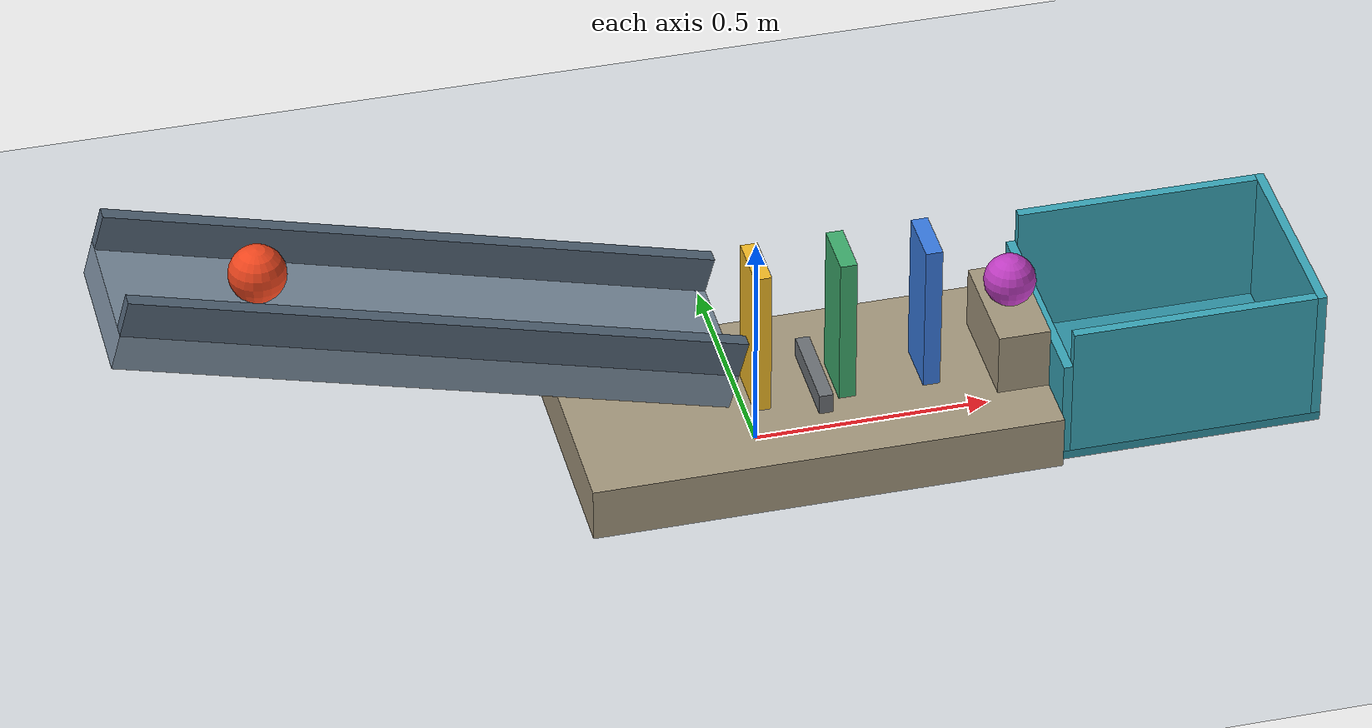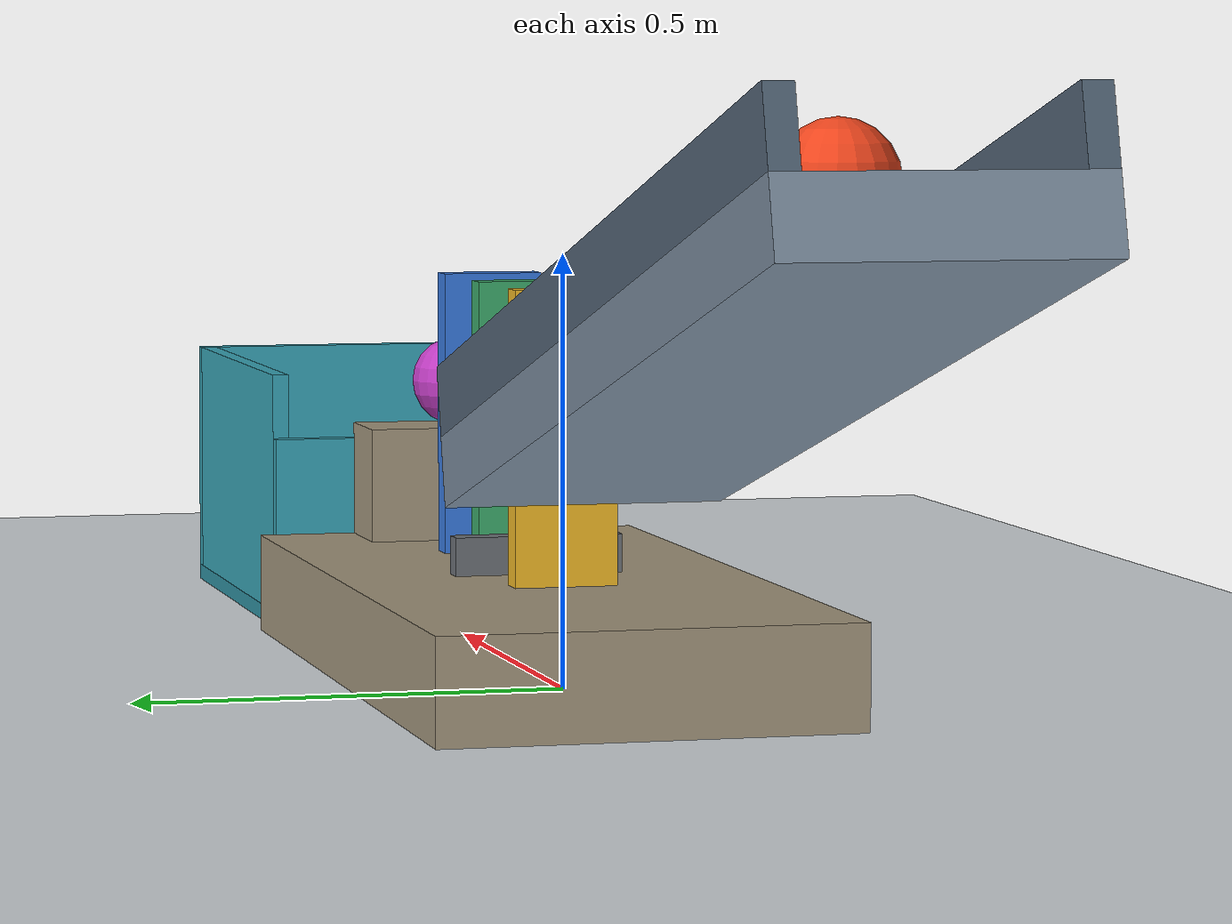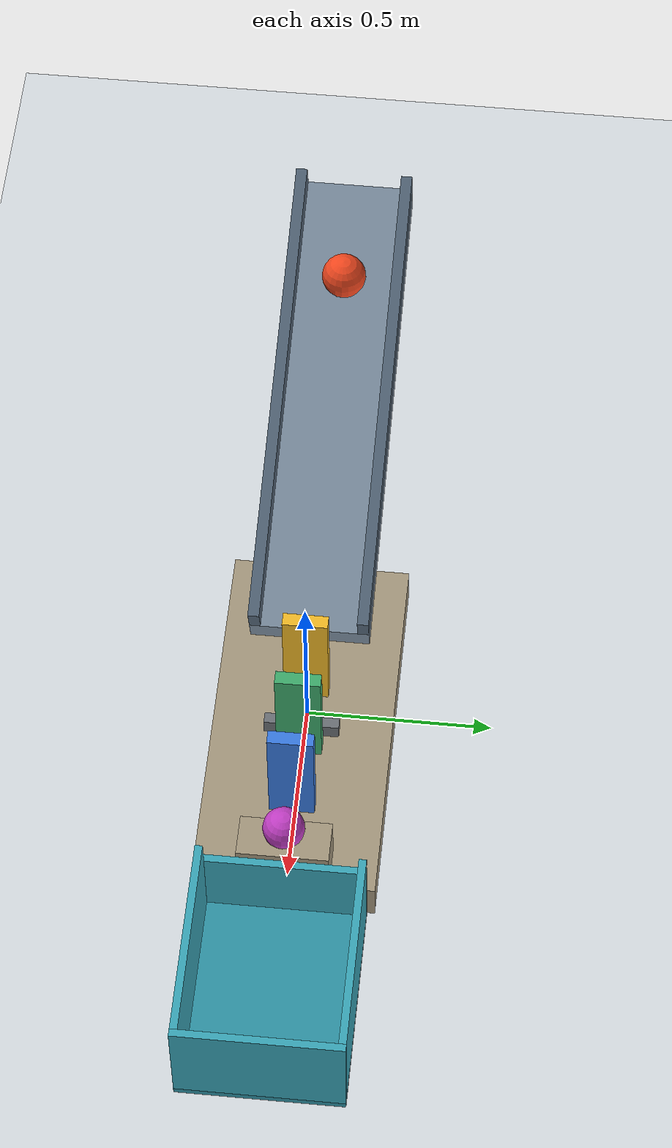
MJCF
<mujoco model="ramp_domino_ball_cup">
  <compiler angle="degree" inertiafromgeom="true"/>
  <option timestep="0.002" gravity="0 0 -9.81" integrator="implicitfast" cone="elliptic" iterations="100" tolerance="1e-10"/>
  <size njmax="1000" nconmax="300"/>
  <statistic center="0.05 0 0.3" extent="1.8"/>

  <visual>
    <headlight ambient="0.4 0.4 0.4" diffuse="0.7 0.7 0.7" specular="0.2 0.2 0.2"/>
    <rgba haze="0.9 0.95 1 1"/>
  </visual>

  <worldbody>
    <light name="main_light" pos="-0.5 -1 3" dir="0.2 0.2 -1" diffuse="0.8 0.8 0.8"/>
    <geom name="floor" type="plane" size="3 2 0.1" rgba="0.84 0.86 0.88 1" friction="0.9 0.005 0.002" condim="6"/>

    <!-- The ramp descends toward +x at 15 degrees. -->
    <body name="ramp" pos="-0.7132046 0 0.4295949" quat="0.991444861 0 0.130526192 0">
      <geom name="ramp_surface" type="box" size="0.65 0.16 0.04" rgba="0.48 0.55 0.62 1" friction="0.65 0.001 0.0001" condim="6" solref="0.01 1"/>
      <geom name="ramp_left_rail" type="box" pos="0 0.145 0.08" size="0.65 0.015 0.04" rgba="0.32 0.39 0.46 1" friction="0.65 0.001 0.0001"/>
      <geom name="ramp_right_rail" type="box" pos="0 -0.145 0.08" size="0.65 0.015 0.04" rgba="0.32 0.39 0.46 1" friction="0.65 0.001 0.0001"/>
    </body>

    <!-- Ball1's initial contact point is exactly 1 m along the ramp from its low end. -->
    <body name="ball1" pos="-1.0253967 0 0.6167746">
      <freejoint name="ball1_free"/>
      <geom name="ball1_sphere" type="sphere" size="0.06" mass="0.075" rgba="0.95 0.28 0.12 1" friction="0.65 0.001 0.0001" condim="6" solref="0.008 1"/>
    </body>

    <body name="domino_stage" pos="0.0975 0 0.06">
      <geom name="domino_stage_surface" type="box" size="0.4975 0.24 0.06" rgba="0.64 0.59 0.49 1" friction="1 0.005 0.001" solref="0.01 1"/>
    </body>

    <!-- A low curb catches the trigger ball while allowing d1 to fall well past vertical. -->
    <body name="trigger_catch" pos="0.125 0 0.1425">
      <geom name="trigger_catch_curb" type="box" size="0.015 0.10 0.0225" rgba="0.42 0.44 0.46 1" friction="1 0.005 0.001" solref="0.008 1"/>
    </body>

    <body name="d1" pos="0 0 0.29">
      <freejoint name="d1_free"/>
      <geom name="d1_block" type="box" size="0.018 0.06 0.17" mass="0.30" rgba="0.95 0.73 0.15 1" friction="1 0.005 0.0001" condim="3" solref="0.008 1"/>
    </body>

    <body name="d2" pos="0.18 0 0.29">
      <freejoint name="d2_free"/>
      <geom name="d2_block" type="box" size="0.018 0.06 0.17" mass="0.17" rgba="0.24 0.67 0.42 1" friction="1 0.005 0.0001" condim="3" solref="0.008 1"/>
    </body>

    <body name="d3" pos="0.36 0 0.29">
      <freejoint name="d3_free"/>
      <geom name="d3_block" type="box" size="0.018 0.06 0.17" mass="0.10" rgba="0.22 0.48 0.88 1" friction="1 0.005 0.0001" condim="3" solref="0.008 1"/>
    </body>

    <!-- The perch presents ball2 to d3 and leads directly over the cup's entry rim. -->
    <body name="ball2_perch" pos="0.54 0 0.19">
      <geom name="ball2_perch_surface" type="box" size="0.055 0.12 0.07" rgba="0.64 0.59 0.49 1" friction="0.8 0.005 0.001" solref="0.008 1"/>
    </body>

    <body name="ball2" pos="0.54 0 0.315">
      <freejoint name="ball2_free"/>
      <geom name="ball2_sphere" type="sphere" size="0.055" mass="0.045" rgba="0.76 0.24 0.77 1" friction="0.8 0.005 0.003" condim="6" solref="0.008 1"/>
    </body>

    <!-- Open-top catching cup with a lowered entry rim and dissipative bottom. -->
    <body name="cup" pos="0.875 0 0">
      <geom name="cup_bottom" type="box" pos="0 0 0.01" size="0.28 0.22 0.01" rgba="0.18 0.57 0.64 1" friction="0.9 0.01 0.02" condim="6" solref="0.008 1"/>
      <geom name="cup_entry_wall" type="box" pos="-0.27 0 0.13" size="0.01 0.22 0.11" rgba="0.22 0.65 0.72 1" friction="0.9 0.01 0.012" condim="6" solref="0.008 1"/>
      <geom name="cup_far_wall" type="box" pos="0.27 0 0.17" size="0.01 0.22 0.15" rgba="0.22 0.65 0.72 1" friction="0.9 0.01 0.012" condim="6" solref="0.008 1"/>
      <geom name="cup_left_wall" type="box" pos="0 0.21 0.17" size="0.26 0.01 0.15" rgba="0.22 0.65 0.72 1" friction="0.9 0.01 0.012" condim="6" solref="0.008 1"/>
      <geom name="cup_right_wall" type="box" pos="0 -0.21 0.17" size="0.26 0.01 0.15" rgba="0.22 0.65 0.72 1" friction="0.9 0.01 0.012" condim="6" solref="0.008 1"/>
    </body>
  </worldbody>

  <keyframe>
    <key name="start"/>
  </keyframe>
</mujoco>
